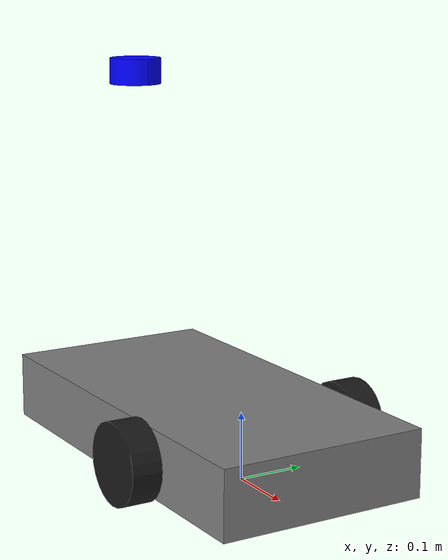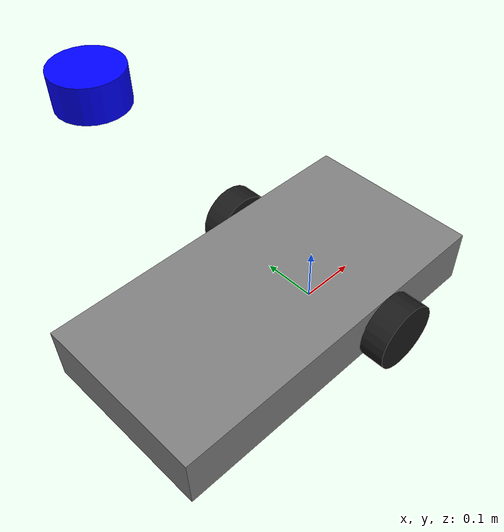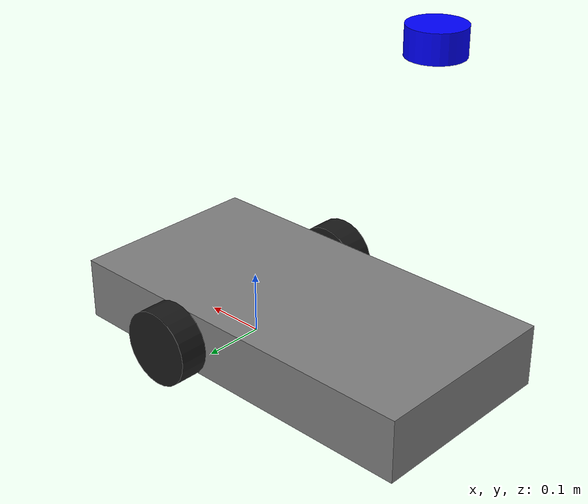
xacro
<?xml version="1.0"?>
<robot name="rover" xmlns:xacro="http://www.ros.org/wiki/xacro">

  <!-- ── Parameters (NEW CHASSIS) ─────────────────────────────────────────── -->
  <xacro:property name="base_width"   value="0.315"/>   <!-- 31.5 cm -->
  <xacro:property name="base_length"  value="0.62"/>    <!-- 62 cm -->
  <xacro:property name="base_height"  value="0.10"/>
  <xacro:property name="wheel_radius" value="0.060"/>   <!-- 3601 Rhino 120 mm dia ÷ 2 = 60 mm -->
  <xacro:property name="wheel_width"  value="0.045"/>   <!-- approx; tune to actual hub width -->
  <xacro:property name="track_width"  value="0.37"/>    <!-- drive-axle center-to-center -->

  <xacro:property name="body_offset_x" value="-0.10"/>

  <!-- LiDAR / IMU placements (relative to base_link) -->
  <xacro:property name="lidar_x"      value="-0.335"/>    <!-- 33.5 cm BEHIND drive axle (mast center, measured) -->
  <xacro:property name="lidar_y"      value="0.0127"/>    <!-- 1.27 cm LEFT of centre, measured (NOT dead centre) -->
  <xacro:property name="lidar_yaw"    value="-0.0202"/>   <!-- -1.16°, provisional -->
  <xacro:property name="lidar_height" value="0.50"/>    <!-- 0.56 m floor→scan − 0.06 base_link height = 0.50 (confirmed) -->

  <xacro:property name="imu_x"        value="-0.0694"/> <!-- 6.94 cm BEHIND drive axle -->
  <xacro:property name="imu_y"        value="0.0"/>     <!-- centered laterally -->
  <xacro:property name="imu_z"        value="0.11145"/> <!-- 17.145 cm above floor -->

  <!-- ── Base footprint (ground plane) ────────────────────────────────────── -->
  <link name="base_footprint"/>

  <joint name="base_footprint_to_base" type="fixed">
    <parent link="base_footprint"/>
    <child  link="base_link"/>
    <!-- base_link is at drive-axle height (= wheel_radius), positioned at the
         drive-axle midpoint on the floor.  X/Y of the joint stay zero. -->
    <origin xyz="0 0 ${wheel_radius}" rpy="0 0 0"/>
  </joint>

  <link name="base_link">
    <visual>
      <!-- Chassis body shifted forward by body_offset_x so it's drawn around
           its actual position relative to the drive axle. -->
      <origin xyz="${body_offset_x} 0 0" rpy="0 0 0"/>
      <geometry>
        <box size="${base_length} ${base_width} ${base_height}"/>
      </geometry>
      <material name="grey"><color rgba="0.5 0.5 0.5 1.0"/></material>
    </visual>
    <collision>
      <origin xyz="${body_offset_x} 0 0" rpy="0 0 0"/>
      <geometry>
        <box size="${base_length} ${base_width} ${base_height}"/>
      </geometry>
    </collision>
    <inertial>
      <mass value="4.0"/>
      <inertia ixx="0.05" ixy="0" ixz="0" iyy="0.10" iyz="0" izz="0.12"/>
    </inertial>
  </link>

  <!-- ── Drive wheels (2, centered on base_link X=0) ──────────────────────── -->
  <xacro:macro name="drive_wheel" params="name y">
    <link name="${name}_wheel">
      <visual>
        <geometry><cylinder radius="${wheel_radius}" length="${wheel_width}"/></geometry>
        <material name="black"><color rgba="0.1 0.1 0.1 1.0"/></material>
      </visual>
      <collision>
        <geometry><cylinder radius="${wheel_radius}" length="${wheel_width}"/></geometry>
      </collision>
      <inertial>
        <mass value="0.5"/>
        <inertia ixx="0.0006" ixy="0" ixz="0" iyy="0.0006" iyz="0" izz="0.0010"/>
      </inertial>
    </link>
    <joint name="${name}_wheel_joint" type="continuous">
      <parent link="base_link"/>
      <child  link="${name}_wheel"/>
      <!-- Wheel sits AT the drive axle (X=0), at the track-width offset. -->
      <origin xyz="0 ${y} 0" rpy="${pi/2} 0 0"/>
      <axis xyz="0 0 1"/>
    </joint>
  </xacro:macro>

  <xacro:drive_wheel name="left_drive"  y=" ${track_width/2}"/>
  <xacro:drive_wheel name="right_drive" y="-${track_width/2}"/>

  <!-- ── Caster outlines (visual only — passive, no kinematics) ───────────── -->
  <!-- Approximate: 4 corner casters on a 62×31.5 cm body, inset 5 cm from the
       outer edges of the chassis.  Tune positions to match physical mounts. -->
  <xacro:macro name="caster_marker" params="name x y">
    <link name="${name}_caster"/>
    <joint name="${name}_caster_joint" type="fixed">
      <parent link="base_link"/>
      <child  link="${name}_caster"/>
      <origin xyz="${x} ${y} ${-wheel_radius + 0.04}" rpy="0 0 0"/>
    </joint>
  </xacro:macro>
  <xacro:caster_marker name="front_left"  x=" 0.16" y=" 0.12"/>
  <xacro:caster_marker name="front_right" x=" 0.16" y="-0.12"/>
  <xacro:caster_marker name="rear_left"   x="-0.36" y=" 0.12"/>
  <xacro:caster_marker name="rear_right"  x="-0.36" y="-0.12"/>

  <!-- ── LiDAR (A1M8) ────────────────────────────────────────────────────── -->
  <link name="laser_frame">
    <visual>
      <geometry><cylinder radius="0.04" length="0.04"/></geometry>
      <material name="blue"><color rgba="0.0 0.0 1.0 1.0"/></material>
    </visual>
    <collision>
      <geometry><cylinder radius="0.04" length="0.04"/></geometry>
    </collision>
    <inertial>
      <mass value="0.18"/>
      <inertia ixx="0.0001" ixy="0" ixz="0" iyy="0.0001" iyz="0" izz="0.0001"/>
    </inertial>
  </link>
  <joint name="lidar_joint" type="fixed">
    <parent link="base_link"/>
    <child  link="laser_frame"/>
    <origin xyz="${lidar_x} ${lidar_y} ${lidar_height}" rpy="0 0 ${lidar_yaw}"/>
  </joint>

  <!-- ── BNO085 IMU ──────────────────────────────────────────────────────── -->
  <link name="imu_link"/>
  <joint name="imu_joint" type="fixed">
    <parent link="base_link"/>
    <child  link="imu_link"/>
    <origin xyz="${imu_x} ${imu_y} ${imu_z}" rpy="0 0 0"/>
  </joint>

  <!-- ── ToF safety belt (6x VL53L1X) ───────────────────────────────────── -->
  <xacro:property name="tof_belt_floor_h"   value="0.135"/>  <!-- VERIFY: front pair + rear, floor to lens -->
  <xacro:property name="tof_corner_floor_h" value="0.155"/>  <!-- VERIFY: the two 45 deg corners -->
  <xacro:property name="tof_down_floor_h"   value="0.365"/>  <!-- VERIFY: the down-looker -->

  <xacro:property name="tof_front_x"    value="0.21"/>     <!-- VERIFY: chassis front face -->
  <xacro:property name="tof_rear_x"     value="-0.41"/>    <!-- VERIFY: chassis rear face -->
  <xacro:property name="tof_front_y"    value="0.10"/>     <!-- VERIFY: forward pair, so 20 cm apart -->
  <xacro:property name="tof_corner_y"   value="0.1575"/>   <!-- VERIFY: chassis half-width -->
  <xacro:property name="tof_corner_deg" value="45"/>       <!-- VERIFY: corners, angled outward -->
  <xacro:property name="tof_down_deg"   value="43"/>       <!-- MEASURED -->

  <!-- ── conversions — nothing to edit below this line ─────────────────────── -->
  <xacro:property name="tof_belt_z"     value="${tof_belt_floor_h   - wheel_radius}"/>
  <xacro:property name="tof_corner_z"   value="${tof_corner_floor_h - wheel_radius}"/>
  <xacro:property name="tof_down_z"     value="${tof_down_floor_h   - wheel_radius}"/>
  <xacro:property name="tof_corner_yaw" value="${radians(tof_corner_deg)}"/>
  <xacro:property name="tof_down_pitch" value="${radians(tof_down_deg)}"/>

  <!-- Frames only: no visual/collision geometry.  These must NOT add to the
       footprint — the Nav2 `footprint` param is the authority on the rover's
       outline and these sensors sit inside it. -->
  <xacro:macro name="tof_sensor" params="name x y z yaw:=0 pitch:=0">
    <link name="tof_${name}_link"/>
    <joint name="tof_${name}_joint" type="fixed">
      <parent link="base_link"/>
      <child  link="tof_${name}_link"/>
      <origin xyz="${x} ${y} ${z}" rpy="0 ${pitch} ${yaw}"/>
    </joint>
  </xacro:macro>

  <xacro:tof_sensor name="front_left"   x="${tof_front_x}" y="${tof_front_y}"   z="${tof_belt_z}"/>
  <xacro:tof_sensor name="front_right"  x="${tof_front_x}" y="${-tof_front_y}"  z="${tof_belt_z}"/>
  <xacro:tof_sensor name="corner_left"  x="${tof_front_x}" y="${tof_corner_y}"  z="${tof_corner_z}"
                    yaw="${tof_corner_yaw}"/>
  <xacro:tof_sensor name="corner_right" x="${tof_front_x}" y="${-tof_corner_y}" z="${tof_corner_z}"
                    yaw="${-tof_corner_yaw}"/>
  <xacro:tof_sensor name="down"         x="${tof_front_x}" y="0"                z="${tof_down_z}"
                    pitch="${tof_down_pitch}"/>
  <xacro:tof_sensor name="rear"         x="${tof_rear_x}"  y="0"                z="${tof_belt_z}"
                    yaw="${pi}"/>

  <xacro:tof_sensor name="down_proj"    x="${tof_front_x}" y="0"                z="${tof_belt_z}"/>

</robot>
